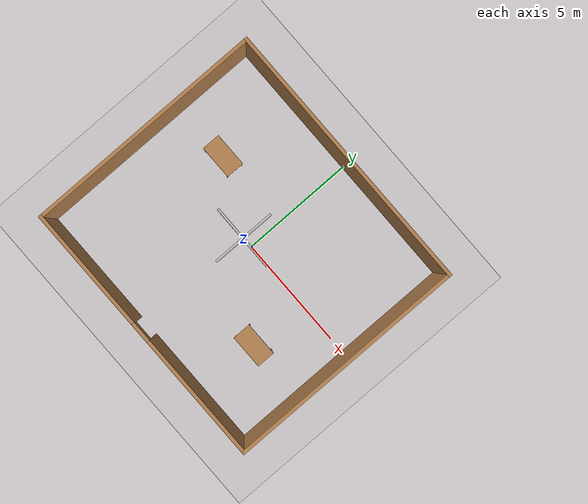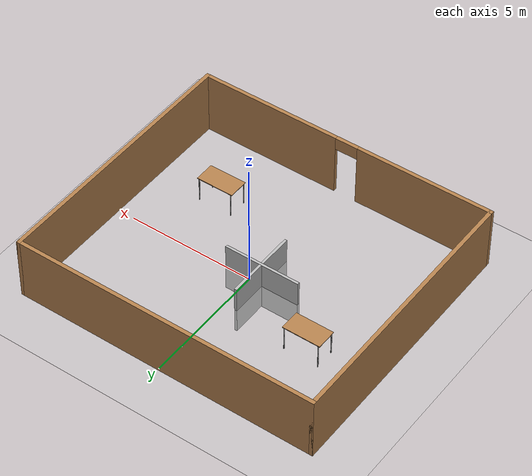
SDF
<sdf version="1.7">
 <world name="default">
  <light name="sun" type="directional">
   <pose>0 0 10 0 -0 0</pose>
   <diffuse>0.8 0.8 0.8 1</diffuse>
   <specular>0.2 0.2 0.2 1</specular>
   <attenuation>
    <range>1000</range>
    <constant>0.9</constant>
    <linear>0.01</linear>
    <quadratic>0.001</quadratic>
   </attenuation>
   <direction>-0.5 0.1 -0.9</direction>
   <spot><inner_angle>0</inner_angle><outer_angle>0</outer_angle><falloff>0</falloff></spot>
  </light>
  <model name="ground_plane">
   <static>1</static>
   <link name="link">
    <collision name="collision">
     <geometry><plane><normal>0 0 1</normal><size>100 100</size></plane></geometry>
     <surface>
      <contact><collide_bitmask>65535</collide_bitmask></contact>
      <friction><ode><mu>100</mu><mu2>50</mu2></ode></friction>
     </surface>
    </collision>
    <visual name="visual">
     <cast_shadows>0</cast_shadows>
     <geometry><plane><normal>0 0 1</normal><size>100 100</size></plane></geometry>
     <material>
      <script><uri>file://media/materials/scripts/gazebo.material</uri><name>Gazebo/Grey</name></script>
     </material>
    </visual>
   </link>
  </model>
  <gravity>0 0 -9.8</gravity>
  <magnetic_field>6e-06 2.3e-05 -4.2e-05</magnetic_field>
  <atmosphere type="adiabatic"/>
  <physics type="ode">
   <max_step_size>0.001</max_step_size>
   <real_time_factor>1</real_time_factor>
   <real_time_update_rate>1000</real_time_update_rate>
  </physics>
  <scene><ambient>0.4 0.4 0.4 1</ambient><background>0.7 0.7 0.7 1</background><shadows>1</shadows></scene>
  <spherical_coordinates>
   <surface_model>EARTH_WGS84</surface_model>
   <latitude_deg>0</latitude_deg>
   <longitude_deg>0</longitude_deg>
   <elevation>0</elevation>
   <heading_deg>0</heading_deg>
  </spherical_coordinates>
  <model name="wall_frame_small">
   <pose>-0.183084 -0.16306 0 0 -0 0</pose>
   <link name="Wall_6">
    <collision name="Wall_6_Collision">
     <geometry><box><size>12 0.15 2.5</size></box></geometry>
     <pose>0 0 1.25 0 -0 0</pose>
    </collision>
    <visual name="Wall_6_Visual">
     <pose>0 0 1.25 0 -0 0</pose>
     <geometry><box><size>12 0.15 2.5</size></box></geometry>
     <material>
      <script><uri>file://media/materials/scripts/gazebo.material</uri><name>Gazebo/Wood</name></script>
      <ambient>1 1 1 1</ambient>
     </material>
     <meta><layer>0</layer></meta>
    </visual>
    <pose>-0 5.175 0 0 -0 0</pose>
   </link>
   <link name="Wall_7">
    <collision name="Wall_7_Collision">
     <geometry><box><size>10.5 0.15 2.5</size></box></geometry>
     <pose>0 0 1.25 0 -0 0</pose>
    </collision>
    <visual name="Wall_7_Visual">
     <pose>0 0 1.25 0 -0 0</pose>
     <geometry><box><size>10.5 0.15 2.5</size></box></geometry>
     <material>
      <script><uri>file://media/materials/scripts/gazebo.material</uri><name>Gazebo/Wood</name></script>
      <ambient>1 1 1 1</ambient>
     </material>
     <meta><layer>0</layer></meta>
    </visual>
    <pose>5.925 -0 0 0 -0 -1.5708</pose>
   </link>
   <link name="Wall_8">
    <pose>-0 -5.175 0 0 -0 3.14159</pose>
    <visual name="Wall_8_Visual_0">
     <pose>-3.17024 0 1.25 0 -0 0</pose>
     <geometry><box><size>5.65951 0.15 2.5</size></box></geometry>
     <material>
      <script><uri>file://media/materials/scripts/gazebo.material</uri><name>Gazebo/Wood</name></script>
      <ambient>1 1 1 1</ambient>
     </material>
     <meta><layer>0</layer></meta>
    </visual>
    <collision name="Wall_8_Collision_0">
     <geometry><box><size>5.65951 0.15 2.5</size></box></geometry>
     <pose>-3.17024 0 1.25 0 -0 0</pose>
    </collision>
    <visual name="Wall_8_Visual_1">
     <pose>3.27976 0 1.25 0 -0 0</pose>
     <geometry><box><size>5.44049 0.15 2.5</size></box></geometry>
     <material>
      <script><uri>file://media/materials/scripts/gazebo.material</uri><name>Gazebo/Wood</name></script>
      <ambient>1 1 1 1</ambient>
     </material>
     <meta><layer>0</layer></meta>
    </visual>
    <collision name="Wall_8_Collision_1">
     <geometry><box><size>5.44049 0.15 2.5</size></box></geometry>
     <pose>3.27976 0 1.25 0 -0 0</pose>
    </collision>
    <visual name="Wall_8_Visual_2">
     <pose>0.10951 0 2.25 0 -0 0</pose>
     <geometry><box><size>0.9 0.15 0.5</size></box></geometry>
     <material>
      <script><uri>file://media/materials/scripts/gazebo.material</uri><name>Gazebo/Wood</name></script>
      <ambient>1 1 1 1</ambient>
     </material>
     <meta><layer>0</layer></meta>
    </visual>
    <collision name="Wall_8_Collision_2">
     <geometry><box><size>0.9 0.15 0.5</size></box></geometry>
     <pose>0.10951 0 2.25 0 -0 0</pose>
    </collision>
   </link>
   <link name="Wall_9">
    <collision name="Wall_9_Collision">
     <geometry><box><size>10.5 0.15 2.5</size></box></geometry>
     <pose>0 0 1.25 0 -0 0</pose>
    </collision>
    <visual name="Wall_9_Visual">
     <pose>0 0 1.25 0 -0 0</pose>
     <geometry><box><size>10.5 0.15 2.5</size></box></geometry>
     <material>
      <script><uri>file://media/materials/scripts/gazebo.material</uri><name>Gazebo/Wood</name></script>
      <ambient>1 1 1 1</ambient>
     </material>
     <meta><layer>0</layer></meta>
    </visual>
    <pose>-5.925 -0 0 0 -0 1.5708</pose>
   </link>
   <static>1</static>
  </model>
  <model name="Table">
   <static>1</static>
   <link name="link">
    <collision name="surface">
     <pose>0 0 1 0 -0 0</pose>
     <geometry><box><size>1.5 0.8 0.03</size></box></geometry>
     <surface><friction><ode><mu>0.6</mu><mu2>0.6</mu2></ode></friction></surface>
    </collision>
    <visual name="visual">
     <pose>0 0 1 0 -0 0</pose>
     <geometry><box><size>1.5 0.8 0.03</size></box></geometry>
     <material>
      <diffuse>1 1 1 1</diffuse>
      <script><uri>file://media/materials/scripts/gazebo.material</uri><name>Gazebo/Wood</name></script>
      <pbr><metal><albedo_map>model://Table/Table_Diffuse.jpg</albedo_map></metal></pbr>
     </material>
    </visual>
    <collision name="front_left_leg_collision">
     <pose>0.68 0.38 0.5 0 -0 0</pose>
     <geometry><cylinder><radius>0.02</radius><length>1</length></cylinder></geometry>
    </collision>
    <visual name="front_left_leg_visual">
     <pose>0.68 0.38 0.5 0 -0 0</pose>
     <geometry><cylinder><radius>0.02</radius><length>1</length></cylinder></geometry>
     <material>
      <diffuse>0.5 0.5 0.5 1</diffuse>
      <script><uri>file://media/materials/scripts/gazebo.material</uri><name>Gazebo/Grey</name></script>
     </material>
    </visual>
    <collision name="front_right_leg_collision">
     <pose>0.68 -0.38 0.5 0 -0 0</pose>
     <geometry><cylinder><radius>0.02</radius><length>1</length></cylinder></geometry>
    </collision>
    <visual name="front_right_leg_visual">
     <pose>0.68 -0.38 0.5 0 -0 0</pose>
     <geometry><cylinder><radius>0.02</radius><length>1</length></cylinder></geometry>
     <material>
      <diffuse>0.5 0.5 0.5 1</diffuse>
      <script><uri>file://media/materials/scripts/gazebo.material</uri><name>Gazebo/Grey</name></script>
     </material>
    </visual>
    <collision name="back_right_leg_collision">
     <pose>-0.68 -0.38 0.5 0 -0 0</pose>
     <geometry><cylinder><radius>0.02</radius><length>1</length></cylinder></geometry>
    </collision>
    <visual name="back_right_leg_visual">
     <pose>-0.68 -0.38 0.5 0 -0 0</pose>
     <geometry><cylinder><radius>0.02</radius><length>1</length></cylinder></geometry>
     <material>
      <diffuse>0.5 0.5 0.5 1</diffuse>
      <script><uri>file://media/materials/scripts/gazebo.material</uri><name>Gazebo/Grey</name></script>
     </material>
    </visual>
    <collision name="back_left_leg_collision">
     <pose>-0.68 0.38 0.5 0 -0 0</pose>
     <geometry><cylinder><radius>0.02</radius><length>1</length></cylinder></geometry>
    </collision>
    <visual name="back_left_leg_visual">
     <pose>-0.68 0.38 0.5 0 -0 0</pose>
     <geometry><cylinder><radius>0.02</radius><length>1</length></cylinder></geometry>
     <material>
      <diffuse>0.5 0.5 0.5 1</diffuse>
      <script><uri>file://media/materials/scripts/gazebo.material</uri><name>Gazebo/Grey</name></script>
     </material>
    </visual>
   </link>
   <pose>-3.46807 1.5057 0 0 -0 0</pose>
  </model>
  <model name="Table_0">
   <static>1</static>
   <link name="link">
    <collision name="surface">
     <pose>0 0 1 0 -0 0</pose>
     <geometry><box><size>1.5 0.8 0.03</size></box></geometry>
     <surface><friction><ode><mu>0.6</mu><mu2>0.6</mu2></ode></friction></surface>
    </collision>
    <visual name="visual">
     <pose>0 0 1 0 -0 0</pose>
     <geometry><box><size>1.5 0.8 0.03</size></box></geometry>
     <material>
      <diffuse>1 1 1 1</diffuse>
      <script><uri>file://media/materials/scripts/gazebo.material</uri><name>Gazebo/Wood</name></script>
      <pbr><metal><albedo_map>model://Table/Table_Diffuse.jpg</albedo_map></metal></pbr>
     </material>
    </visual>
    <collision name="front_left_leg_collision">
     <pose>0.68 0.38 0.5 0 -0 0</pose>
     <geometry><cylinder><radius>0.02</radius><length>1</length></cylinder></geometry>
    </collision>
    <visual name="front_left_leg_visual">
     <pose>0.68 0.38 0.5 0 -0 0</pose>
     <geometry><cylinder><radius>0.02</radius><length>1</length></cylinder></geometry>
     <material>
      <diffuse>0.5 0.5 0.5 1</diffuse>
      <script><uri>file://media/materials/scripts/gazebo.material</uri><name>Gazebo/Grey</name></script>
     </material>
    </visual>
    <collision name="front_right_leg_collision">
     <pose>0.68 -0.38 0.5 0 -0 0</pose>
     <geometry><cylinder><radius>0.02</radius><length>1</length></cylinder></geometry>
    </collision>
    <visual name="front_right_leg_visual">
     <pose>0.68 -0.38 0.5 0 -0 0</pose>
     <geometry><cylinder><radius>0.02</radius><length>1</length></cylinder></geometry>
     <material>
      <diffuse>0.5 0.5 0.5 1</diffuse>
      <script><uri>file://media/materials/scripts/gazebo.material</uri><name>Gazebo/Grey</name></script>
     </material>
    </visual>
    <collision name="back_right_leg_collision">
     <pose>-0.68 -0.38 0.5 0 -0 0</pose>
     <geometry><cylinder><radius>0.02</radius><length>1</length></cylinder></geometry>
    </collision>
    <visual name="back_right_leg_visual">
     <pose>-0.68 -0.38 0.5 0 -0 0</pose>
     <geometry><cylinder><radius>0.02</radius><length>1</length></cylinder></geometry>
     <material>
      <diffuse>0.5 0.5 0.5 1</diffuse>
      <script><uri>file://media/materials/scripts/gazebo.material</uri><name>Gazebo/Grey</name></script>
     </material>
    </visual>
    <collision name="back_left_leg_collision">
     <pose>-0.68 0.38 0.5 0 -0 0</pose>
     <geometry><cylinder><radius>0.02</radius><length>1</length></cylinder></geometry>
    </collision>
    <visual name="back_left_leg_visual">
     <pose>-0.68 0.38 0.5 0 -0 0</pose>
     <geometry><cylinder><radius>0.02</radius><length>1</length></cylinder></geometry>
     <material>
      <diffuse>0.5 0.5 0.5 1</diffuse>
      <script><uri>file://media/materials/scripts/gazebo.material</uri><name>Gazebo/Grey</name></script>
     </material>
    </visual>
   </link>
   <pose>3.04351 -2.50192 0 0 -0 0</pose>
  </model>
  <model name="room_wall_2x5m">
   <link name="link">
    <visual name="visual">
     <geometry><box><size>0.1 2.88555 2</size></box></geometry>
     <material>
      <script>
       <uri>model://room_wall_2x5m/material/script</uri>
       <uri>model://room_wall_2x5m/material/textures</uri>
       <name>Custom/room_wall_2x5m</name>
      </script>
     </material>
    </visual>
    <collision name="collision"><geometry><box><size>0.1 2.88555 2</size></box></geometry></collision>
   </link>
   <static>1</static>
   <pose>-0.470966 -0.008628 0 0 -0 0</pose>
  </model>
  <model name="room_wall_2x5m_0">
   <link name="link">
    <visual name="visual">
     <geometry><box><size>0.1 3.01595 2</size></box></geometry>
     <material>
      <script>
       <uri>model://room_wall_2x5m/material/script</uri>
       <uri>model://room_wall_2x5m/material/textures</uri>
       <name>Custom/room_wall_2x5m</name>
      </script>
     </material>
    </visual>
    <collision name="collision"><geometry><box><size>0.1 3.01595 2</size></box></geometry></collision>
   </link>
   <static>1</static>
   <pose>-0.505441 -0.031405 0 0 -0 1.56727</pose>
  </model>
 </world>
</sdf>
